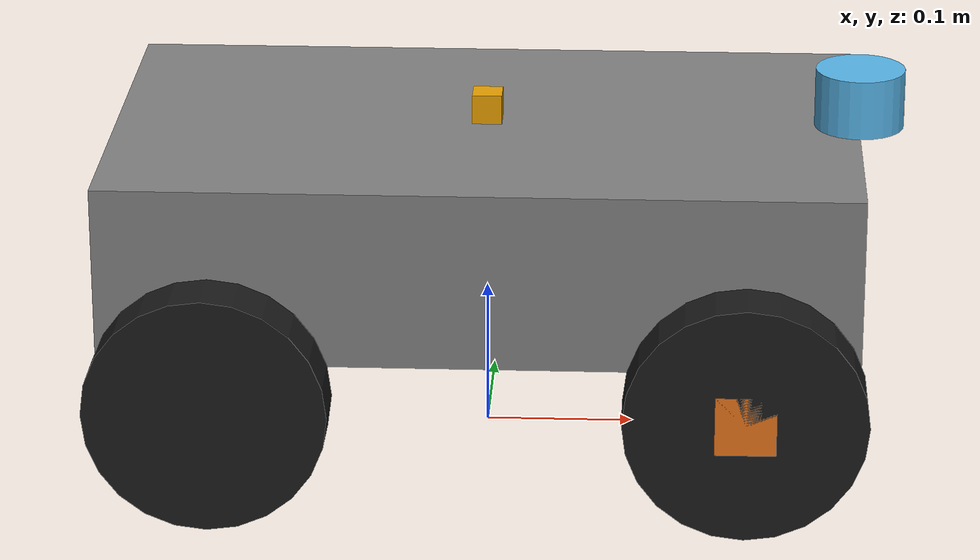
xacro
<?xml version="1.0"?>
<robot name="ackermann_bot" xmlns:xacro="http://www.ros.org/wiki/xacro">

  <xacro:include filename="$(find arcs2_description)/urdf/materials.xacro"/>
  <xacro:include filename="$(find arcs2_description)/urdf/inertias.xacro"/>
  <xacro:include filename="$(find arcs2_description)/urdf/ros2_control_ackermann.xacro"/>
  <xacro:include filename="$(find arcs2_description)/urdf/sensors.xacro"/>

  <xacro:property name="chassis_x" value="0.5"/>
  <xacro:property name="chassis_y" value="0.3"/>
  <xacro:property name="chassis_z" value="0.12"/>
  <xacro:property name="chassis_mass" value="4.0"/>

  <xacro:property name="wheelbase" value="0.35"/>
  <xacro:property name="track" value="0.34"/>

  <xacro:property name="wheel_radius" value="0.08"/>
  <xacro:property name="wheel_length" value="0.04"/>
  <xacro:property name="wheel_mass" value="0.3"/>

  <xacro:property name="knuckle_size" value="0.04"/>
  <xacro:property name="knuckle_mass" value="0.05"/>

  <link name="base_link">
  </link>

  <joint name="base_to_chassis" type="fixed">
    <parent link="base_link"/>
    <child link="chassis"/>
    <origin xyz="0 0 ${2*wheel_radius}" rpy="0 0 0"/>
  </joint>

  <link name="chassis">
    <visual>
      <origin xyz="0 0 0" rpy="0 0 0"/>
      <geometry><box size="${chassis_x} ${chassis_y} ${chassis_z}"/></geometry>
      <material name="chassis_grey"/>
    </visual>
    <collision>
      <origin xyz="0 0 0" rpy="0 0 0"/>
      <geometry><box size="${chassis_x} ${chassis_y} ${chassis_z}"/></geometry>
    </collision>
    <xacro:inertial_box mass="${chassis_mass}" x="${chassis_x}" y="${chassis_y}" z="${chassis_z}">
      <origin xyz="0 0 0" rpy="0 0 0"/>
    </xacro:inertial_box>
  </link>

  <xacro:macro name="steer_wheel" params="prefix y_sign">
    <link name="${prefix}_steering_knuckle">
      <visual>
        <geometry><box size="${knuckle_size} ${knuckle_size} ${knuckle_size}"/></geometry>
        <material name="knuckle_orange"/>
      </visual>
      <collision>
        <geometry><box size="${knuckle_size} ${knuckle_size} ${knuckle_size}"/></geometry>
      </collision>
      <xacro:inertial_box mass="${knuckle_mass}" x="${knuckle_size}" y="${knuckle_size}" z="${knuckle_size}">
        <origin xyz="0 0 0" rpy="0 0 0"/>
      </xacro:inertial_box>
    </link>

    <joint name="${prefix}_steering_joint" type="revolute">
      <parent link="chassis"/>
      <child link="${prefix}_steering_knuckle"/>
      <origin xyz="${wheelbase/2} ${y_sign * track/2} ${-wheel_radius}" rpy="0 0 0"/>
      <axis xyz="0 0 1"/>
      <limit effort="10" lower="-0.6" upper="0.6" velocity="2.0"/>
    </joint>

    <link name="${prefix}_wheel">
      <visual>
        <origin xyz="0 0 0" rpy="${pi/2} 0 0"/>
        <geometry><cylinder radius="${wheel_radius}" length="${wheel_length}"/></geometry>
        <material name="wheel_black"/>
      </visual>
      <collision>
        <origin xyz="0 0 0" rpy="${pi/2} 0 0"/>
        <geometry><cylinder radius="${wheel_radius}" length="${wheel_length}"/></geometry>
      </collision>
      <xacro:inertial_cylinder mass="${wheel_mass}" radius="${wheel_radius}" length="${wheel_length}">
        <origin xyz="0 0 0" rpy="${pi/2} 0 0"/>
      </xacro:inertial_cylinder>
    </link>

    <joint name="${prefix}_wheel_joint" type="continuous">
      <parent link="${prefix}_steering_knuckle"/>
      <child link="${prefix}_wheel"/>
      <origin xyz="0 0 0" rpy="0 0 0"/>
      <axis xyz="0 1 0"/>
    </joint>
  </xacro:macro>

  <xacro:steer_wheel prefix="front_left" y_sign="1"/>
  <xacro:steer_wheel prefix="front_right" y_sign="-1"/>

  <xacro:macro name="drive_wheel" params="prefix y_sign">
    <link name="${prefix}_wheel">
      <visual>
        <origin xyz="0 0 0" rpy="${pi/2} 0 0"/>
        <geometry><cylinder radius="${wheel_radius}" length="${wheel_length}"/></geometry>
        <material name="wheel_black"/>
      </visual>
      <collision>
        <origin xyz="0 0 0" rpy="${pi/2} 0 0"/>
        <geometry><cylinder radius="${wheel_radius}" length="${wheel_length}"/></geometry>
      </collision>
      <xacro:inertial_cylinder mass="${wheel_mass}" radius="${wheel_radius}" length="${wheel_length}">
        <origin xyz="0 0 0" rpy="${pi/2} 0 0"/>
      </xacro:inertial_cylinder>
    </link>

    <joint name="${prefix}_wheel_joint" type="continuous">
      <parent link="chassis"/>
      <child link="${prefix}_wheel"/>
      <origin xyz="${-wheelbase/2} ${y_sign * track/2} ${-wheel_radius}" rpy="0 0 0"/>
      <axis xyz="0 1 0"/>
    </joint>
  </xacro:macro>

  <xacro:drive_wheel prefix="rear_left" y_sign="1"/>
  <xacro:drive_wheel prefix="rear_right" y_sign="-1"/>

  <gazebo>
    <plugin filename="gz-sim-odometry-publisher-system" name="gz::sim::systems::OdometryPublisher">
      <odom_frame>odom</odom_frame>
      <robot_base_frame>base_link</robot_base_frame>
      <odom_topic>gz_odom_ground_truth</odom_topic>
      <tf_topic>/model/ackermann_bot/tf</tf_topic>
      <odom_publish_frequency>30</odom_publish_frequency>
      <dimensions>2</dimensions>
    </plugin>
  </gazebo>

  <gazebo reference="chassis"><material>Gazebo/Grey</material></gazebo>
  <gazebo reference="front_left_steering_knuckle"><material>Gazebo/Orange</material></gazebo>
  <gazebo reference="front_right_steering_knuckle"><material>Gazebo/Orange</material></gazebo>
  <gazebo reference="front_left_wheel">
    <material>Gazebo/Black</material>
    <mu1>1.5</mu1>
    <mu2>1.5</mu2>
  </gazebo>
  <gazebo reference="front_right_wheel">
    <material>Gazebo/Black</material>
    <mu1>1.5</mu1>
    <mu2>1.5</mu2>
  </gazebo>
  <gazebo reference="rear_left_wheel">
    <material>Gazebo/Black</material>
    <mu1>1.5</mu1>
    <mu2>1.5</mu2>
  </gazebo>
  <gazebo reference="rear_right_wheel">
    <material>Gazebo/Black</material>
    <mu1>1.5</mu1>
    <mu2>1.5</mu2>
  </gazebo>

</robot>

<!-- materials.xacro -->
<robot xmlns:xacro="http://www.ros.org/wiki/xacro">

    <material name="blue">
        <color rgba="0 0 0.8 1"/>
    </material>

    <material name="white">
        <color rgba="1 1 1 1"/>
    </material>

    <material name="chassis_grey">
        <color rgba="0.5 0.5 0.5 1.0"/>
    </material>

    <material name="wheel_black">
        <color rgba="0.1 0.1 0.1 1.0"/>
    </material>

    <material name="knuckle_orange">
        <color rgba="0.9 0.45 0.1 1.0"/>
    </material>
</robot>

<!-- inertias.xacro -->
<robot xmlns:xacro="http://www.ros.org/wiki/xacro">

  <xacro:macro name="inertial_box" params="mass x y z *origin">
    <inertial>
      <xacro:insert_block name="origin"/>
      <mass value="${mass}"/>
      <inertia ixx="${(1/12) * mass * (y*y+z*z)}" ixy="0.0" ixz="0.0"
               iyy="${(1/12) * mass * (x*x+z*z)}" iyz="0.0"
               izz="${(1/12) * mass * (x*x+y*y)}"/>
    </inertial>
  </xacro:macro>

  <xacro:macro name="inertial_cylinder" params="mass radius length *origin">
    <inertial>
      <xacro:insert_block name="origin"/>
      <mass value="${mass}"/>
      <inertia ixx="${(1/12) * mass * (3*radius*radius + length*length)}" ixy="0.0" ixz="0.0"
               iyy="${(1/12) * mass * (3*radius*radius + length*length)}" iyz="0.0"
               izz="${(1/2) * mass * radius*radius}"/>
    </inertial>
  </xacro:macro>

  <xacro:macro name="inertial_sphere" params="mass radius *origin">
    <inertial>
      <xacro:insert_block name="origin"/>
      <mass value="${mass}"/>
      <inertia ixx="${(2/5) * mass * radius*radius}" ixy="0.0" ixz="0.0"
               iyy="${(2/5) * mass * radius*radius}" iyz="0.0"
               izz="${(2/5) * mass * radius*radius}"/>
    </inertial>
  </xacro:macro>

</robot>

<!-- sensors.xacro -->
<robot xmlns:xacro="http://www.ros.org/wiki/xacro">

  <link name="imu_link">
    <visual>
      <geometry><box size="0.02 0.02 0.02"/></geometry>
    </visual>
    <xacro:inertial_box mass="0.01" x="0.02" y="0.02" z="0.02">
      <origin xyz="0 0 0" rpy="0 0 0"/>
    </xacro:inertial_box>
  </link>

  <joint name="imu_joint" type="fixed">
    <parent link="chassis"/>
    <child link="imu_link"/>
    <origin xyz="0 0 0.07" rpy="0 0 0"/>
  </joint>

  <gazebo reference="imu_link">
    <sensor name="imu_sensor" type="imu">
      <always_on>true</always_on>
      <update_rate>100</update_rate>
      <topic>imu</topic>
      <gz_frame_id>imu_link</gz_frame_id>
    </sensor>
  </gazebo>

  <link name="lidar_link">
    <visual>
      <geometry><cylinder radius="0.03" length="0.04"/></geometry>
    </visual>
    <xacro:inertial_cylinder mass="0.05" radius="0.03" length="0.04">
      <origin xyz="0 0 0" rpy="0 0 0"/>
    </xacro:inertial_cylinder>
  </link>

  <joint name="lidar_joint" type="fixed">
    <parent link="chassis"/>
    <child link="lidar_link"/>
    <origin xyz="0.25 0 0.08" rpy="0 0 0"/>
  </joint>

  <gazebo reference="lidar_link">
    <sensor name="lidar_sensor" type="gpu_lidar">
      <always_on>true</always_on>
      <update_rate>10</update_rate>
      <topic>scan</topic>
      <gz_frame_id>lidar_link</gz_frame_id>
      <lidar>
        <scan>
          <horizontal>
            <samples>360</samples>
            <resolution>1</resolution>
            <min_angle>-3.14159</min_angle>
            <max_angle>3.14159</max_angle>
          </horizontal>
          <vertical>
            <samples>1</samples>
            <resolution>1</resolution>
            <min_angle>0</min_angle>
            <max_angle>0</max_angle>
          </vertical>
        </scan>
        <range>
          <min>0.12</min>
          <max>10.0</max>
          <resolution>0.01</resolution>
        </range>
      </lidar>
    </sensor>
  </gazebo>

</robot>
